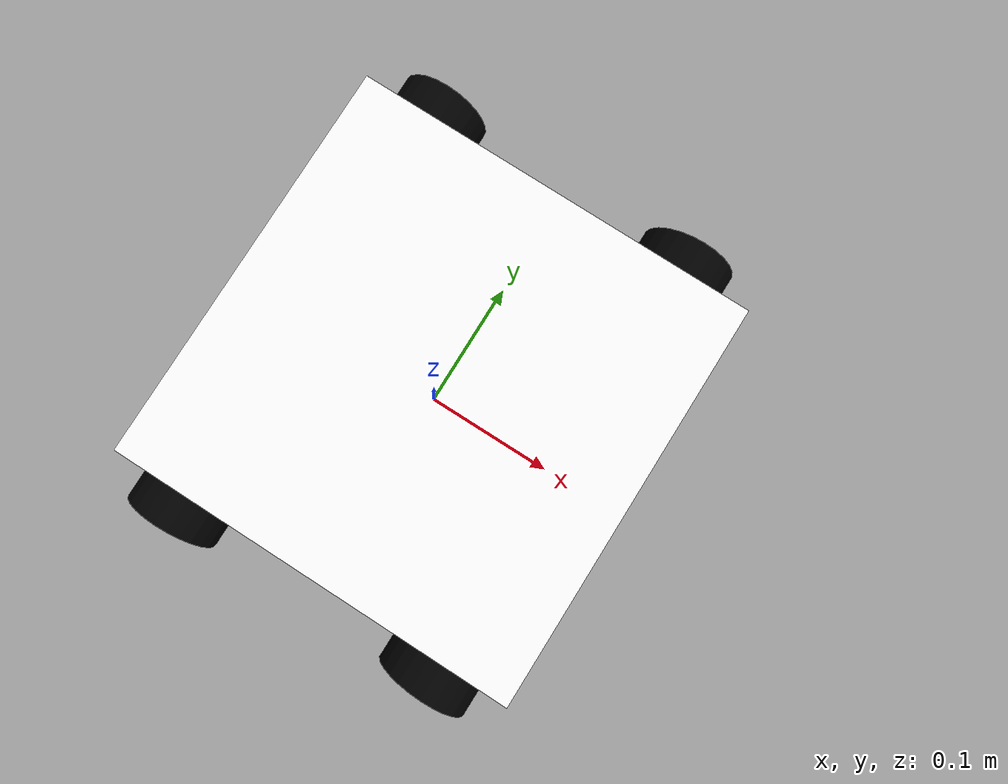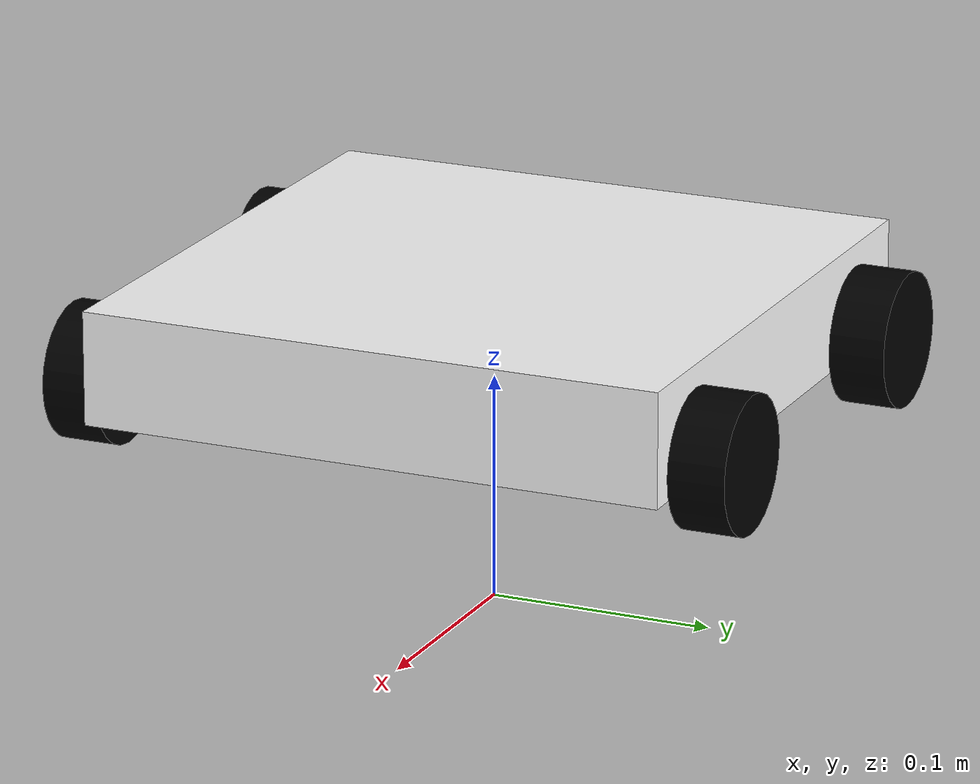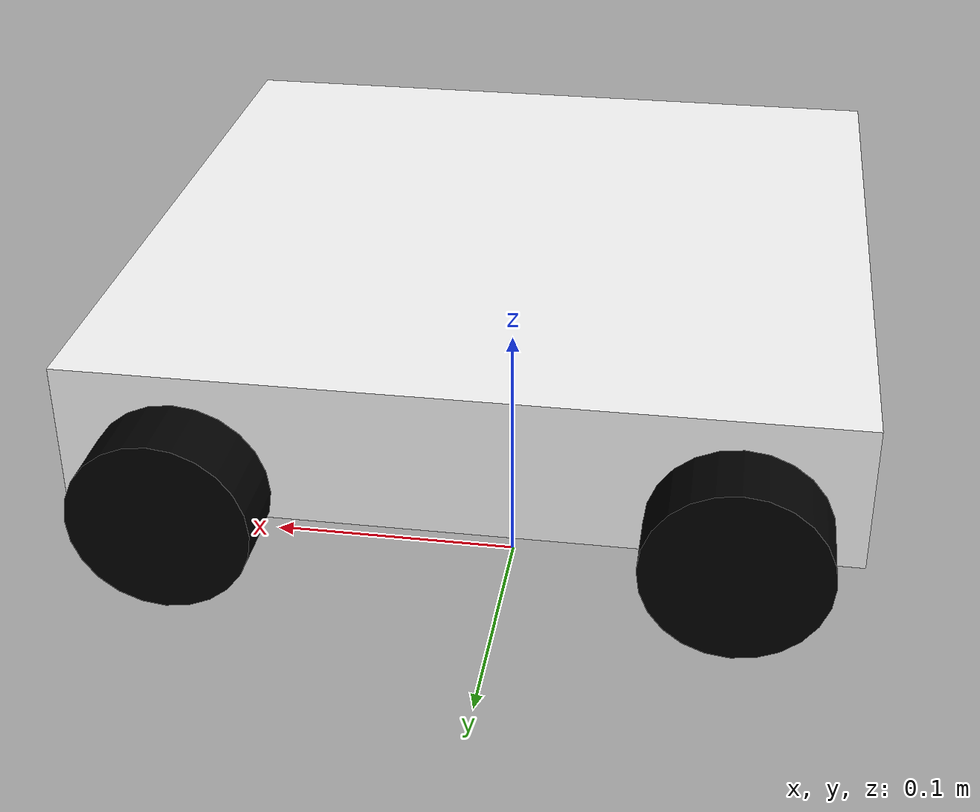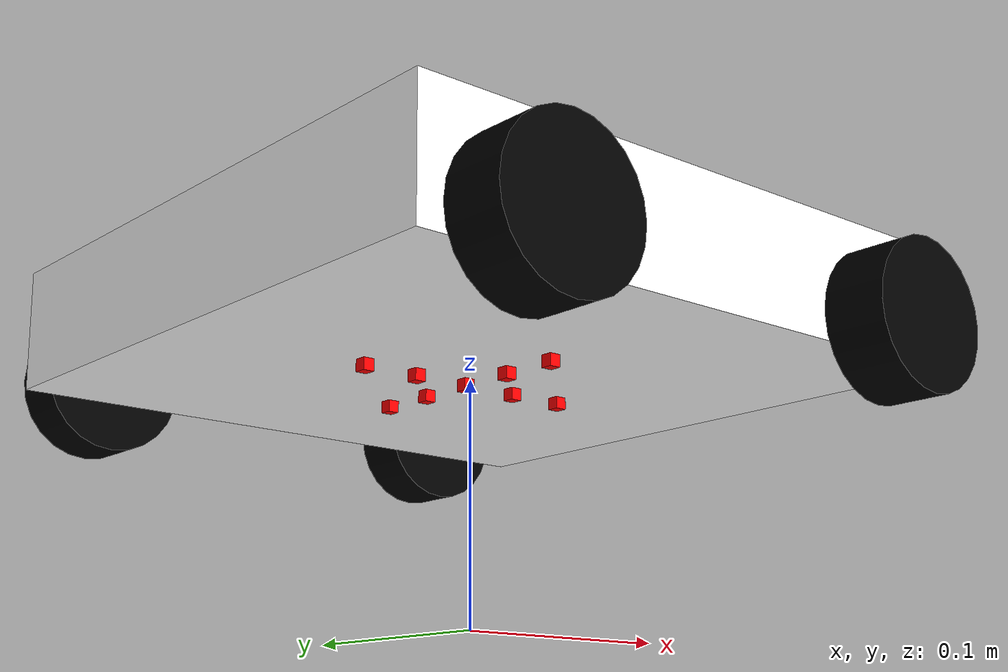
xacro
<?xml version="1.0"?>
<robot xmlns:xacro="http://www.ros.org/wiki/xacro" xmlns:gz="http://gazebosim.org/schema">

  <!-- Include useful macros -->
  <xacro:include filename="inertial_macros.xacro" />
  <xacro:include filename="colors.xacro" />

  <!-- Define the robot's properties -->
  <xacro:property name="chassis_length" value="0.26" />
  <xacro:property name="chassis_width" value="0.26" />
  <xacro:property name="chassis_height" value="0.05" />
  <xacro:property name="chassis_mass" value="0.350" />
  <xacro:property name="wheel_axis_offset_x" value="0.04" />
  <xacro:property name="wheel_axis_offset_z" value="0.01" />
  <xacro:property name="wheel_radius" value="0.03" />
  <xacro:property name="wheel_thickness" value="0.025" />
  <xacro:property name="ldr_inter_offset" value="0.025" />
  <xacro:property name="ldr_height" value="0.005" />

  <!-- World link without inertia required by rviz -->
  <link name="base_link">
  </link>

  <!-- CHASSIS -->
  <joint name="chassis_joint" type="fixed">
    <parent link="base_link" />
    <child link="chassis_link" />
    <origin xyz="${-chassis_length/2} 0.0 0.1" rpy="0.0 0.0 0.0" />
  </joint>

  <link name="chassis_link">
    <visual>
      <geometry>
        <box size="${chassis_length} ${chassis_width} ${chassis_height}" />
      </geometry>
      <origin xyz="${chassis_length/2} 0 ${chassis_height/2}" />
      <material name="white" />
    </visual>
    <collision>
      <geometry>
        <box size="${chassis_length} ${chassis_width} ${chassis_height}" />
      </geometry>
      <origin xyz="${chassis_length/2} 0 ${chassis_height/2}" />
    </collision>
    <xacro:inertial_box mass="${chassis_mass}" x="${chassis_length}" y="${chassis_width}"
      z="${chassis_height}">
      <origin xyz="${chassis_length/2} 0 ${chassis_height/2}" />
    </xacro:inertial_box>
  </link>

  <!-- Chassis center link to link the LDRs to -->
  <joint name="chassis_center_joint" type="fixed">
    <parent link="chassis_link"/>
    <child link="chassis_center_link"/>
    <origin xyz="${chassis_length/2} 0 0" rpy="0 0 0"/>
  </joint>

  <link name="chassis_center_link"></link>

  <!-- WHEELS (looked at from the front of the robot) -->
  <joint name="BR_wheel_joint" type="continuous">
    <parent link="chassis_link" />
    <child link="BR_wheel_link" />
    <origin xyz="${wheel_axis_offset_x} ${chassis_width/2 + wheel_thickness} ${wheel_axis_offset_z}" rpy="${-pi/2} 0 0" />
    <axis xyz="0.0 0.0 -1.0" />
    <limit effort="10000" velocity="10"/>
    <dynamics damping="1.0" friction="1.0"/>
  </joint>

  <link name="BR_wheel_link">
    <visual>
      <geometry>
        <cylinder radius="${wheel_radius}" length="${wheel_thickness}" />
      </geometry>
      <origin xyz="0 0 ${-wheel_thickness/2}" />
      <material name="black" />
    </visual>
    <collision>
      <geometry>
        <cylinder radius="${wheel_radius}" length="${wheel_thickness}" />
      </geometry>
      <origin xyz="0 0 ${-wheel_thickness/2}" />
    </collision>
    <xacro:inertial_cylinder mass="0.020" radius="${wheel_radius}" length="${wheel_thickness}">
      <origin xyz="0 0 ${-wheel_thickness/2}" />
    </xacro:inertial_cylinder>
  </link>

  <joint name="BL_wheel_joint" type="continuous">
    <parent link="chassis_link" />
    <child link="BL_wheel_link" />
    <origin xyz="${wheel_axis_offset_x} ${-chassis_width/2} ${wheel_axis_offset_z}"
      rpy="${pi/2} 0 0" />
    <axis xyz="0.0 0.0 1.0" />
    <limit effort="10000" velocity="10"/>
    <dynamics damping="1.0" friction="1.0"/>
  </joint>

  <link name="BL_wheel_link">
    <visual>
      <geometry>
        <cylinder radius="${wheel_radius}" length="${wheel_thickness}" />
      </geometry>
      <origin xyz="0 0 ${wheel_thickness/2}" />
      <material name="black" />
    </visual>
    <collision>
      <geometry>
        <cylinder radius="${wheel_radius}" length="${wheel_thickness}" />
      </geometry>
      <origin xyz="0 0 ${wheel_thickness/2}" />
    </collision>
    <xacro:inertial_cylinder mass="0.020" radius="${wheel_radius}" length="${wheel_thickness}">
      <origin xyz="0 0 ${wheel_thickness/2}" />
    </xacro:inertial_cylinder>
  </link>

  <joint name="FL_wheel_joint" type="continuous">
    <parent link="chassis_link" />
    <child link="FL_wheel_link" />
    <origin xyz="${chassis_length - wheel_axis_offset_x} ${-chassis_width/2} ${wheel_axis_offset_z}"
      rpy="${pi/2} 0 0" />
    <axis xyz="0.0 0.0 1.0" />
    <limit effort="10000" velocity="10"/>
    <dynamics damping="1.0" friction="1.0"/>
  </joint>

  <link name="FL_wheel_link">
    <visual>
      <geometry>
        <cylinder radius="${wheel_radius}" length="${wheel_thickness}" />
      </geometry>
      <origin xyz="0 0 ${wheel_thickness/2}" />
      <material name="black" />
    </visual>
    <collision>
      <geometry>
        <cylinder radius="${wheel_radius}" length="${wheel_thickness}" />
      </geometry>
      <origin xyz="0 0 ${wheel_thickness/2}" />
    </collision>
    <xacro:inertial_cylinder mass="0.020" radius="${wheel_radius}" length="${wheel_thickness}">
      <origin xyz="0 0 ${wheel_thickness/2}" />
    </xacro:inertial_cylinder>
  </link>

  <joint name="FR_wheel_joint" type="continuous">
    <parent link="chassis_link" />
    <child link="FR_wheel_link" />
    <origin xyz="${chassis_length - wheel_axis_offset_x} ${chassis_width/2 + wheel_thickness} ${wheel_axis_offset_z}"
      rpy="${-pi/2} 0 0" />
    <axis xyz="0.0 0.0 -1.0" />
    <limit effort="10000" velocity="10"/>
    <dynamics damping="1.0" friction="1.0"/>
  </joint>

  <link name="FR_wheel_link">
    <visual>
      <geometry>
        <cylinder radius="${wheel_radius}" length="${wheel_thickness}" />
      </geometry>
      <origin xyz="0 0 ${-wheel_thickness/2}" />
      <material name="black" />
    </visual>
    <collision>
      <geometry>
        <cylinder radius="${wheel_radius}" length="${wheel_thickness}" />
      </geometry>
      <origin xyz="0 0 ${-wheel_thickness/2}" />
    </collision>
    <xacro:inertial_cylinder mass="0.020" length="${wheel_thickness}" radius="${wheel_radius}">
      <origin xyz="0 0 ${-wheel_thickness/2}" />
    </xacro:inertial_cylinder>
  </link>

  <!-- LDR PLACEMENTS -->
  <joint name="center_ldr_joint" type="fixed">
    <parent link="chassis_center_link" />
    <child link="center_ldr_link" />
    <origin xyz="0 0 ${-ldr_height/2}" rpy="0 ${pi/2} 0"/>
  </joint>

  <link name="center_ldr_link">
    <visual>
      <geometry>
        <box size="${ldr_height} ${ldr_height} ${ldr_height}" />
      </geometry>
      <material name="red" />
      <origin xyz="0 0 ${-ldr_height/2}" rpy="0 0 0"/>
    </visual>
    <collision>
      <geometry>
        <box size="${ldr_height} ${ldr_height} ${ldr_height}"/>
      </geometry>
    </collision>
    <xacro:inertial_box mass="0.001" x="${ldr_height}" y="${ldr_height}"
      z="${ldr_height}">
      <origin xyz="0 0 ${ldr_height/2}" />
    </xacro:inertial_box>
  </link>

  <joint name="x1_ldr_joint" type="fixed">
    <parent link="center_ldr_link" />
    <child link="x1_ldr_link" />
    <origin xyz="0 0 ${ldr_inter_offset}" />
  </joint>

  <link name="x1_ldr_link">
    <visual>
      <geometry>
        <box size="${ldr_height} ${ldr_height} ${ldr_height}" />
      </geometry>
      <material name="red" />
      <origin xyz="0 0 ${-ldr_height/2}" />
    </visual>
    <collision>
      <geometry>
        <box size="${ldr_height} ${ldr_height} ${ldr_height}"/>
      </geometry>
    </collision>
    <xacro:inertial_box mass="0.001" x="${ldr_height}" y="${ldr_height}"
      z="${ldr_height}">
      <origin xyz="0 0 ${-ldr_height/2}" />
    </xacro:inertial_box>
  </link>

  <joint name="x2_ldr_joint" type="fixed">
    <parent link="x1_ldr_link" />
    <child link="x2_ldr_link" />
    <origin xyz="0 0 ${ldr_inter_offset}" />
  </joint>

  <link name="x2_ldr_link">
    <visual>
      <geometry>
        <box size="${ldr_height} ${ldr_height} ${ldr_height}" />
      </geometry>
      <material name="red" />
      <origin xyz="0 0 ${-ldr_height/2}" />
    </visual>
    <collision>
      <geometry>
        <box size="${ldr_height} ${ldr_height} ${ldr_height}"/>
      </geometry>
    </collision>
    <xacro:inertial_box mass="0.001" x="${ldr_height}" y="${ldr_height}"
      z="${ldr_height}">
      <origin xyz="0 0 ${-ldr_height/2}" />
    </xacro:inertial_box>
  </link>

  <joint name="x-1_ldr_joint" type="fixed">
    <parent link="center_ldr_link" />
    <child link="x-1_ldr_link" />
    <origin xyz="0 0 ${-ldr_inter_offset}" />
  </joint>

  <link name="x-1_ldr_link">
    <visual>
      <geometry>
        <box size="${ldr_height} ${ldr_height} ${ldr_height}" />
      </geometry>
      <material name="red" />
      <origin xyz="0 0 ${-ldr_height/2}" />
    </visual>
    <collision>
      <geometry>
        <box size="${ldr_height} ${ldr_height} ${ldr_height}"/>
      </geometry>
    </collision>
    <xacro:inertial_box mass="0.001" x="${ldr_height}" y="${ldr_height}"
      z="${ldr_height}">
      <origin xyz="0 0 ${-ldr_height/2}" />
    </xacro:inertial_box>
  </link>

  <joint name="x-2_ldr_joint" type="fixed">
    <parent link="x-1_ldr_link" />
    <child link="x-2_ldr_link" />
    <origin xyz="0 0 ${-ldr_inter_offset}" />
  </joint>

  <link name="x-2_ldr_link">
    <visual>
      <geometry>
        <box size="${ldr_height} ${ldr_height} ${ldr_height}" />
      </geometry>
      <material name="red" />
      <origin xyz="0 0 ${-ldr_height/2}" />
    </visual>
    <collision>
      <geometry>
        <box size="${ldr_height} ${ldr_height} ${ldr_height}"/>
      </geometry>
    </collision>
    <xacro:inertial_box mass="0.001" x="${ldr_height}" y="${ldr_height}"
      z="${ldr_height}">
      <origin xyz="0 0 ${-ldr_height/2}" />
    </xacro:inertial_box>
  </link>

  <joint name="y-1_ldr_joint" type="fixed">
    <parent link="center_ldr_link" />
    <child link="y-1_ldr_link" />
    <origin xyz="0 ${-ldr_inter_offset} 0" />
  </joint>

  <link name="y-1_ldr_link">
    <visual>
      <geometry>
        <box size="${ldr_height} ${ldr_height} ${ldr_height}" />
      </geometry>
      <material name="red" />
      <origin xyz="0 0 ${-ldr_height/2}" />
    </visual>
    <collision>
      <geometry>
        <box size="${ldr_height} ${ldr_height} ${ldr_height}"/>
      </geometry>
    </collision>
    <xacro:inertial_box mass="0.001" x="${ldr_height}" y="${ldr_height}"
      z="${ldr_height}">
      <origin xyz="0 0 ${-ldr_height/2}" />
    </xacro:inertial_box>
  </link>

  <joint name="y-2_ldr_joint" type="fixed">
    <parent link="y-1_ldr_link" />
    <child link="y-2_ldr_link" />
    <origin xyz="0 ${-ldr_inter_offset} 0" />
  </joint>

  <link name="y-2_ldr_link">
    <visual>
      <geometry>
        <box size="${ldr_height} ${ldr_height} ${ldr_height}" />
      </geometry>
      <material name="red" />
      <origin xyz="0 0 ${-ldr_height/2}" />
    </visual>
    <collision>
      <geometry>
        <box size="${ldr_height} ${ldr_height} ${ldr_height}"/>
      </geometry>
    </collision>
    <xacro:inertial_box mass="0.001" x="${ldr_height}" y="${ldr_height}"
      z="${ldr_height}">
      <origin xyz="0 0 ${-ldr_height/2}" />
    </xacro:inertial_box>
  </link>

  <joint name="y1_ldr_joint" type="fixed">
    <parent link="center_ldr_link" />
    <child link="y1_ldr_link" />
    <origin xyz="0 ${ldr_inter_offset} 0" />
  </joint>

  <link name="y1_ldr_link">
    <visual>
      <geometry>
        <box size="${ldr_height} ${ldr_height} ${ldr_height}" />
      </geometry>
      <material name="red" />
      <origin xyz="0 0 ${-ldr_height/2}" />
    </visual>
    <collision>
      <geometry>
        <box size="${ldr_height} ${ldr_height} ${ldr_height}"/>
      </geometry>
    </collision>
    <xacro:inertial_box mass="0.001" x="${ldr_height}" y="${ldr_height}"
      z="${ldr_height}">
      <origin xyz="0 0 ${-ldr_height/2}" />
    </xacro:inertial_box>
  </link>

  <joint name="y2_ldr_joint" type="fixed">
    <parent link="y1_ldr_link" />
    <child link="y2_ldr_link" />
    <origin xyz="0 ${ldr_inter_offset} 0" />
  </joint>

  <link name="y2_ldr_link">
    <visual>
      <geometry>
        <box size="${ldr_height} ${ldr_height} ${ldr_height}" />
      </geometry>
      <material name="red" />
      <origin xyz="0 0 ${-ldr_height/2}" />
    </visual>
    <collision>
      <geometry>
        <box size="${ldr_height} ${ldr_height} ${ldr_height}"/>
      </geometry>
    </collision>
    <xacro:inertial_box mass="0.001" x="${ldr_height}" y="${ldr_height}"
      z="${ldr_height}">
      <origin xyz="0 0 ${-ldr_height/2}" />
    </xacro:inertial_box>
  </link>

  <!-- GAZEBO information -->
  <gazebo>
    <plugin
      filename="gz-sim-mecanum-drive-system"
      name="gz::sim::systems::MecanumDrive">
      <front_left_joint>FL_wheel_joint</front_left_joint>
      <front_right_joint>FR_wheel_joint</front_right_joint>
      <back_left_joint>BL_wheel_joint</back_left_joint>
      <back_right_joint>BR_wheel_joint</back_right_joint>
      <wheel_separation>0.26</wheel_separation> <!-- Chassis width -->
      <wheelbase>0.18</wheelbase> <!-- Chassis length - 2*wheel_offset_x -->
      <wheel_radius>0.03</wheel_radius>
      <min_acceleration>-5</min_acceleration>
      <max_acceleration>5</max_acceleration>
    </plugin>
  </gazebo>

  <gazebo reference="x1_ldr_link">
    <sensor name="f1" type="camera">
      <camera>
        <horizontal_fov>1.25</horizontal_fov>
        <image>
          <width>10</width>
          <height>8</height>
        </image>
        <clip> <!-- The range of the camera-->
          <near>0.001</near>
          <far>0.2</far>
        </clip>
        <noise>
          <type>gaussian</type>
          <mean>0.0</mean>
          <stddev>0.2</stddev>
        </noise>
      </camera>
      <topic>milo/fldr1</topic>
      <update_rate>7</update_rate>
    </sensor>
  </gazebo>

  <gazebo reference="x2_ldr_link">
    <sensor name="f0" type="camera">
      <camera>
        <horizontal_fov>1.25</horizontal_fov>
        <image>
          <width>10</width>
          <height>8</height>
        </image>
        <clip> <!-- The range of the camera-->
          <near>0.001</near>
          <far>0.2</far>
        </clip>
        <noise>
          <type>gaussian</type>
          <mean>0.0</mean>
          <stddev>0.2</stddev>
        </noise>
      </camera>
      <topic>milo/fldr2</topic>
      <update_rate>7</update_rate>
    </sensor>
  </gazebo>

  <gazebo reference="x-1_ldr_link">
    <sensor name="f2" type="camera">
      <camera>
        <horizontal_fov>1.25</horizontal_fov>
        <image>
          <width>10</width>
          <height>8</height>
        </image>
        <clip> <!-- The range of the camera-->
          <near>0.001</near>
          <far>0.2</far>
        </clip>
        <noise>
          <type>gaussian</type>
          <mean>0.0</mean>
          <stddev>0.2</stddev>
        </noise>
      </camera>
      <topic>milo/bldr1</topic>
      <update_rate>7</update_rate>
    </sensor>
  </gazebo>

  <gazebo reference="x-2_ldr_link">
    <sensor name="f3" type="camera">
      <camera>
        <horizontal_fov>1.25</horizontal_fov>
        <image>
          <width>10</width>
          <height>8</height>
        </image>
        <clip> <!-- The range of the camera-->
          <near>0.001</near>
          <far>0.2</far>
        </clip>
        <noise>
          <type>gaussian</type>
          <mean>0.0</mean>
          <stddev>0.2</stddev>
        </noise>
      </camera>
      <topic>milo/bldr2</topic>
      <update_rate>7</update_rate>
    </sensor>
  </gazebo>

  <gazebo reference="y1_ldr_link">
    <sensor name="l1" type="camera">
      <camera>
        <horizontal_fov>1.25</horizontal_fov>
        <image>
          <width>10</width>
          <height>8</height>
        </image>
        <clip> <!-- The range of the camera-->
          <near>0.001</near>
          <far>0.2</far>
        </clip>
        <noise>
          <type>gaussian</type>
          <mean>0.0</mean>
          <stddev>0.2</stddev>
        </noise>
      </camera>
      <topic>milo/lldr1</topic>
      <update_rate>7</update_rate>
    </sensor>
  </gazebo>

  <gazebo reference="y-1_ldr_link">
    <sensor name="l2" type="camera">
      <camera>
        <horizontal_fov>1.25</horizontal_fov>
        <image>
          <width>10</width>
          <height>8</height>
        </image>
        <clip> <!-- The range of the camera-->
          <near>0.001</near>
          <far>0.2</far>
        </clip>
        <noise>
          <type>gaussian</type>
          <mean>0.0</mean>
          <stddev>0.2</stddev>
        </noise>
      </camera>
      <topic>milo/rldr1</topic>
      <update_rate>7</update_rate>
    </sensor>
  </gazebo>

  <gazebo reference="y2_ldr_link">
    <sensor name="l0" type="camera">
      <camera>
        <horizontal_fov>1.25</horizontal_fov>
        <image>
          <width>10</width>
          <height>8</height>
        </image>
        <clip> <!-- The range of the camera-->
          <near>0.001</near>
          <far>0.2</far>
        </clip>
        <noise>
          <type>gaussian</type>
          <mean>0.0</mean>
          <stddev>0.2</stddev>
        </noise>
      </camera>
      <topic>milo/lldr2</topic>
      <update_rate>7</update_rate>
    </sensor>
  </gazebo>

  <gazebo reference="y-2_ldr_link">
    <sensor name="l3" type="camera">
      <camera>
        <horizontal_fov>1.25</horizontal_fov>
        <image>
          <width>10</width>
          <height>8</height>
        </image>
        <clip> <!-- The range of the camera-->
          <near>0.001</near>
          <far>0.2</far>
        </clip>
        <noise>
          <type>gaussian</type>
          <mean>0.0</mean>
          <stddev>0.2</stddev>
        </noise>
      </camera>
      <topic>milo/rldr2</topic>
      <update_rate>7</update_rate>
    </sensor>
  </gazebo>

  <!-- STEP 6 - Gazebo frictions and colors -->
  <gazebo reference='FL_wheel_link'>
    <collision>
      <surface>
        <friction>
          <ode>
            <mu>0.8</mu>
            <mu2>0.5</mu2>
            <fdir1 gz:expressed_in="base_link">1 -1 0</fdir1>
          </ode>
        </friction>
      </surface>
    </collision>
  </gazebo>

  <gazebo reference='BL_wheel_link'>
    <collision>
      <surface>
        <friction>
          <ode>
            <mu>0.8</mu>
            <mu2>0.5</mu2>
            <fdir1 gz:expressed_in="base_link">1 1 0</fdir1>
          </ode>
        </friction>
      </surface>
    </collision>
  </gazebo>

  <gazebo reference='FR_wheel_link'>
    <collision>
      <surface>
        <friction>
          <ode>
            <mu>0.8</mu>
            <mu2>0.5</mu2>
            <fdir1 gz:expressed_in="base_link">1 1 0</fdir1>
          </ode>
        </friction>
      </surface>
    </collision>
  </gazebo>

  <gazebo reference='BR_wheel_link'>
    <collision>
      <surface>
        <friction>
          <ode>
            <mu>0.8</mu>
            <mu2>0.5</mu2>
            <fdir1 gz:expressed_in="base_link">1 -1 0</fdir1>
          </ode>
        </friction>
      </surface>
    </collision>
  </gazebo>

  <gazebo reference="chassis_link">
    <mu1>0.000002</mu1>
    <mu2>0.000002</mu2>
  </gazebo>
</robot>

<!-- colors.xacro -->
<robot >
  <material name="white">
      <color rgba="1 1 1 1" />
  </material>

  <material name="orange">
      <color rgba="1 0.3 0.1 1"/>
  </material>

  <material name="blue">
      <color rgba="0.2 0.2 1 1"/>
  </material>

  <material name="black">
      <color rgba="0 0 0 1"/>
  </material>

  <material name="red">
      <color rgba="1 0 0 1"/>
  </material>
</robot>
